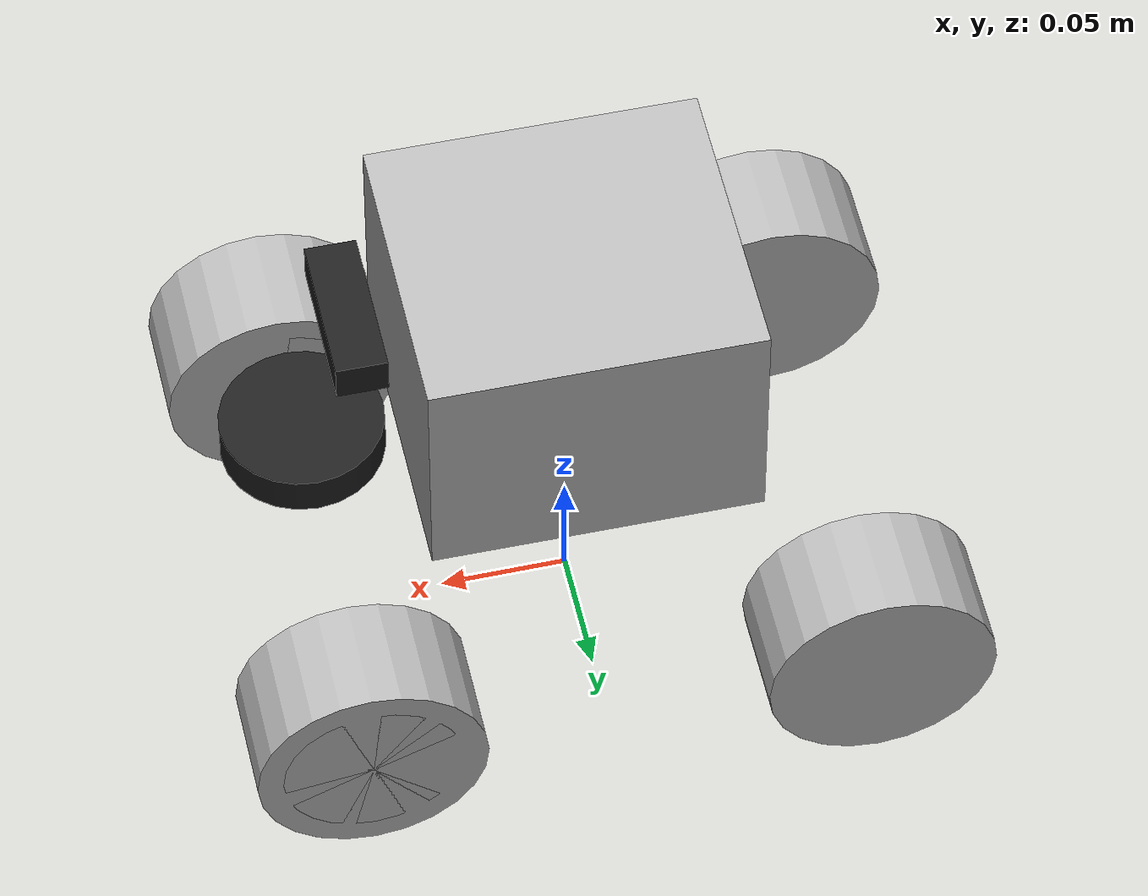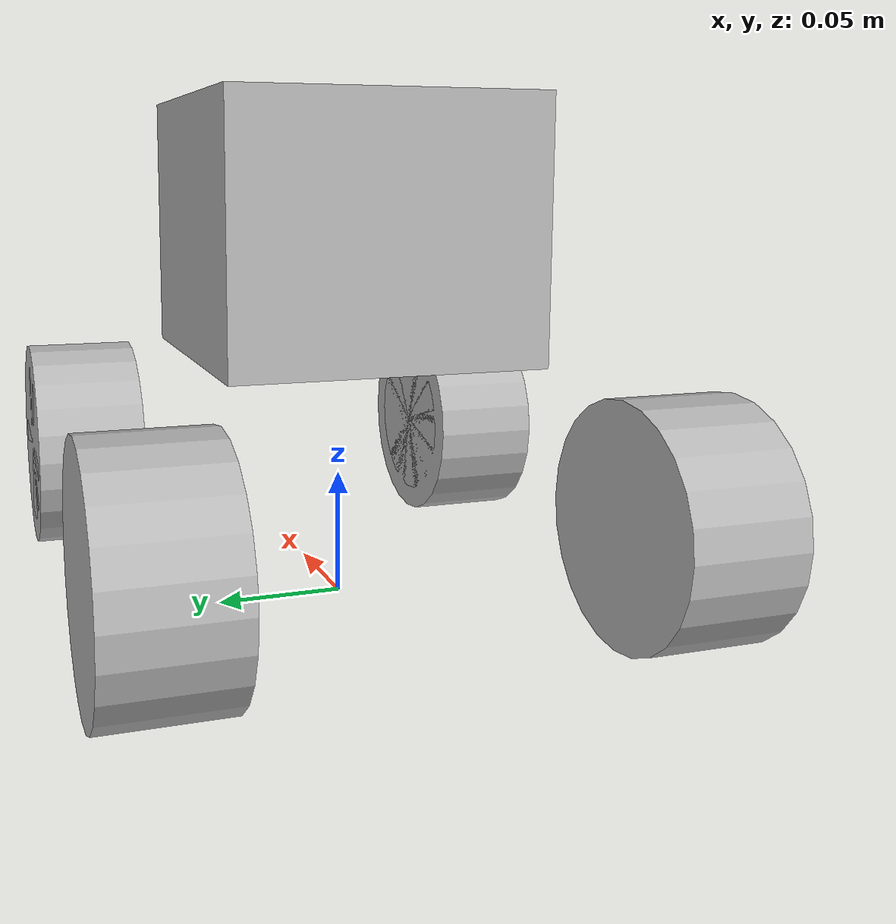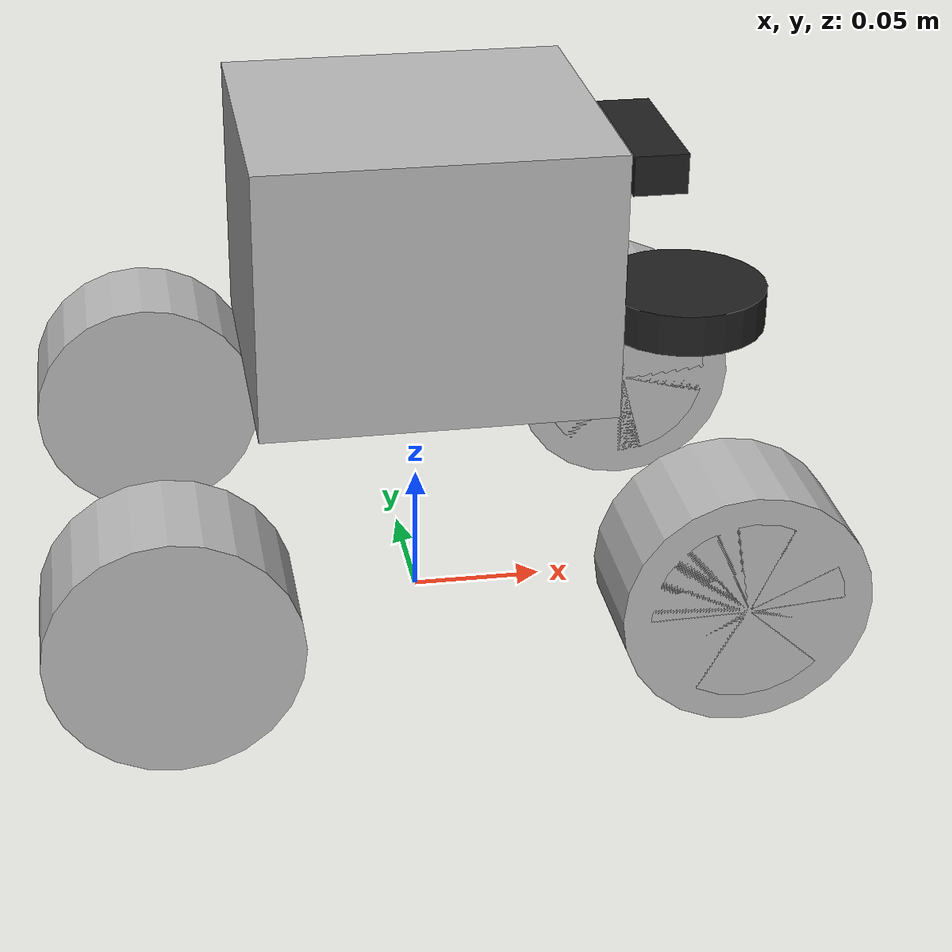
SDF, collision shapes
<?xml version="1.0"?>
<sdf version='1.9'>
  <model name='limo_ackerman'>
    <link name='base_footprint'>
      <inertial>
        <pose>0 0 0.15 0 0 0</pose>
        <mass>2.1556999999999999</mass>
        <inertia>
          <ixx>0.23999999999999999</ixx>
          <ixy>0</ixy>
          <ixz>0</ixz>
          <iyy>0.95999999999999996</iyy>
          <iyz>0</iyz>
          <izz>0.95999999999999996</izz>
        </inertia>
      </inertial>
      <collision name='base_footprint_fixed_joint_lump__base_link_collision'>
        <pose>0 0 0.15 0 0 0</pose>
        <geometry>
          <box>
            <size>0.13 0.12 0.1</size>
          </box>
        </geometry>
      </collision>
      <visual name='base_footprint_fixed_joint_lump__base_link_visual'>
        <pose>0 0 0 0 0 1.57</pose>
        <geometry>
          <mesh>
            <scale>1 1 1</scale>
            <uri>file:///home/esparza/uned_tfg/ros2_ws/install/uned_limo_gazebo/share/uned_limo_gazebo/limo_description/meshes/limo_optimal.dae</uri>
          </mesh>
        </geometry>
      </visual>
    </link>
    <joint name='depth_camera_joint' type='revolute'>
      <pose relative_to='base_footprint'>0.08400000000000001 0 0.18 0 0 0</pose>
      <parent>base_footprint</parent>
      <child>depth_camera_link</child>
      <axis>
        <xyz>1 0 0</xyz>
        <limit>
          <lower>0</lower>
          <upper>0</upper>
          <effort>0</effort>
          <velocity>0</velocity>
        </limit>
        <dynamics>
          <spring_reference>0</spring_reference>
          <spring_stiffness>0</spring_stiffness>
        </dynamics>
      </axis>
    </joint>
    <link name='depth_camera_link'>
      <pose relative_to='depth_camera_joint'>0 0 0 0 0 0</pose>
      <inertial>
        <pose>0 0 0 0 0 0</pose>
        <mass>0.10000000000000001</mass>
        <inertia>
          <ixx>9.9999999999999995e-07</ixx>
          <ixy>0</ixy>
          <ixz>0</ixz>
          <iyy>9.9999999999999995e-07</iyy>
          <iyz>0</iyz>
          <izz>9.9999999999999995e-07</izz>
        </inertia>
      </inertial>
      <collision name='depth_camera_link_fixed_joint_lump__depth_camera_collision_collision'>
        <pose>0 0 0 0 0 0</pose>
        <geometry>
          <box>
            <size>0.02 0.06 0.015</size>
          </box>
        </geometry>
      </collision>
      <visual name='depth_camera_link_fixed_joint_lump__depth_camera_visual_visual'>
        <pose>0 0 0 0 0 0</pose>
        <geometry>
          <box>
            <size>0.02 0.06 0.015</size>
          </box>
        </geometry>
        <material>
          <diffuse>0.125 0.125 0.125 1</diffuse>
          <ambient>0.125 0.125 0.125 1</ambient>
        </material>
      </visual>
      <sensor name='sensor_camera' type='depth_camera'>
        <pose>0.0 0.0 0.0 0.0 0.0 0.0</pose>
        <always_on>true</always_on>
        <visualize>true</visualize>
        <update_rate>10</update_rate>
        <topic>/limo/color/image_raw</topic>
        <camera name='head'>
          <camera_info_topic>/limo/color/camera_info</camera_info_topic>
          <horizontal_fov>1.3962634</horizontal_fov>
          <image>
            <width>640</width>
            <height>480</height>
            <format>R8G8B8</format>
          </image>
          <clip>
            <near>0.02</near>
            <far>300</far>
          </clip>
        </camera>
        <gz_frame_id>depth_link</gz_frame_id>
      </sensor>
    </link>
    <joint name='imu_joint' type='revolute'>
      <pose relative_to='base_footprint'>0 0 0.04999999999999999 0 0 0</pose>
      <parent>base_footprint</parent>
      <child>imu_link</child>
      <axis>
        <xyz>1 0 0</xyz>
        <limit>
          <lower>0</lower>
          <upper>0</upper>
          <effort>0</effort>
          <velocity>0</velocity>
        </limit>
        <dynamics>
          <spring_reference>0</spring_reference>
          <spring_stiffness>0</spring_stiffness>
        </dynamics>
      </axis>
    </joint>
    <link name='imu_link'>
      <pose relative_to='imu_joint'>0 0 0 0 0 0</pose>
      <inertial>
        <pose>0 0 0 0 0 0</pose>
        <mass>0.01</mass>
        <inertia>
          <ixx>9.9999999999999995e-08</ixx>
          <ixy>0</ixy>
          <ixz>0</ixz>
          <iyy>9.9999999999999995e-08</iyy>
          <iyz>0</iyz>
          <izz>9.9999999999999995e-08</izz>
        </inertia>
      </inertial>
      <collision name='imu_link_fixed_joint_lump__imu_collision_collision'>
        <pose>0 0 0 0 0 0</pose>
        <geometry>
          <box>
            <size>0.001 0.001 0.001</size>
          </box>
        </geometry>
      </collision>
      <visual name='imu_link_fixed_joint_lump__imu_visual_visual'>
        <pose>0 0 0 0 0 0</pose>
        <geometry>
          <box>
            <size>0.001 0.001 0.001</size>
          </box>
        </geometry>
        <material>
          <diffuse>0.125 0.125 0.125 1</diffuse>
          <ambient>0.125 0.125 0.125 1</ambient>
        </material>
      </visual>
      <gravity>true</gravity>
      <sensor name='twr_imu' type='imu'>
        <always_on>true</always_on>
        <update_rate>100</update_rate>
        <visualize>true</visualize>
        <topic>/limo/imu</topic>
        <pose>0 0 0 0 0 0</pose>
        <imu>
          <angular_velocity>
            <x>
              <noise type='gaussian'>
                <mean>0</mean>
                <stddev>0.00020000000000000001</stddev>
              </noise>
            </x>
            <y>
              <noise type='gaussian'>
                <mean>0</mean>
                <stddev>0.00020000000000000001</stddev>
              </noise>
            </y>
            <z>
              <noise type='gaussian'>
                <mean>0</mean>
                <stddev>0.00020000000000000001</stddev>
              </noise>
            </z>
          </angular_velocity>
          <linear_acceleration>
            <x>
              <noise type='gaussian'>
                <mean>0</mean>
                <stddev>0.017000000000000001</stddev>
              </noise>
            </x>
            <y>
              <noise type='gaussian'>
                <mean>0</mean>
                <stddev>0.017000000000000001</stddev>
              </noise>
            </y>
            <z>
              <noise type='gaussian'>
                <mean>0</mean>
                <stddev>0.017000000000000001</stddev>
              </noise>
            </z>
          </linear_acceleration>
          <orientation>
            <x>
              <noise type='gaussian'>
                <mean>0.0</mean>
                <stddev>2e-3</stddev>
              </noise>
            </x>
            <y>
              <noise type='gaussian'>
                <mean>0.0</mean>
                <stddev>2e-3</stddev>
              </noise>
            </y>
            <z>
              <noise type='gaussian'>
                <mean>0.0</mean>
                <stddev>2e-3</stddev>
              </noise>
            </z>
          </orientation>
        </imu>
        <gz_frame_id>imu_link</gz_frame_id>
      </sensor>
    </link>
    <joint name='laser_joint' type='revolute'>
      <pose relative_to='base_footprint'>0.103 0 0.116 0 0 0</pose>
      <parent>base_footprint</parent>
      <child>laser_link</child>
      <axis>
        <xyz>1 0 0</xyz>
        <limit>
          <lower>0</lower>
          <upper>0</upper>
          <effort>0</effort>
          <velocity>0</velocity>
        </limit>
        <dynamics>
          <spring_reference>0</spring_reference>
          <spring_stiffness>0</spring_stiffness>
        </dynamics>
      </axis>
    </joint>
    <link name='laser_link'>
      <pose relative_to='laser_joint'>0 0 0 0 0 0</pose>
      <inertial>
        <pose>0 0 0 0 0 0</pose>
        <mass>0.10000000000000001</mass>
        <inertia>
          <ixx>9.9999999999999995e-07</ixx>
          <ixy>0</ixy>
          <ixz>0</ixz>
          <iyy>9.9999999999999995e-07</iyy>
          <iyz>0</iyz>
          <izz>9.9999999999999995e-07</izz>
        </inertia>
      </inertial>
      <collision name='laser_link_fixed_joint_lump__laser_collision_collision'>
        <pose>0 0 0 0 0 0</pose>
        <geometry>
          <cylinder>
            <length>0.016</length>
            <radius>0.032000000000000001</radius>
          </cylinder>
        </geometry>
      </collision>
      <visual name='laser_link_fixed_joint_lump__laser_visual_visual'>
        <pose>0 0 0 0 0 0</pose>
        <geometry>
          <cylinder>
            <length>0.01</length>
            <radius>0.02</radius>
          </cylinder>
        </geometry>
        <material>
          <diffuse>0.125 0.125 0.125 1</diffuse>
          <ambient>0.125 0.125 0.125 1</ambient>
        </material>
      </visual>
      <sensor name='laser' type='gpu_lidar'>
        <always_on>true</always_on>
        <visualize>true</visualize>
        <update_rate>10</update_rate>
        <topic>/limo/scan</topic>
        <lidar>
          <scan>
            <horizontal>
              <samples>120</samples>
              <resolution>1</resolution>
              <min_angle>-3.1415899999999999</min_angle>
              <max_angle>3.1415899999999999</max_angle>
            </horizontal>
          </scan>
          <range>
            <min>0.29999999999999999</min>
            <max>15</max>
            <resolution>0.014999999999999999</resolution>
          </range>
          <noise>
            <type>gaussian</type>
            <mean>0</mean>
            <stddev>0.01</stddev>
          </noise>
        </lidar>
        <gz_frame_id>laser_link</gz_frame_id>
      </sensor>
    </link>
    <joint name='left_steering_hinge_wheel' type='revolute'>
      <pose relative_to='base_footprint'>0.1 0.07000000000000001 0.04900199999999999 0 0 0</pose>
      <parent>base_footprint</parent>
      <child>left_steering_hinge</child>
      <axis>
        <xyz>0 0 1</xyz>
        <limit>
          <lower>-0.52359876699999996</lower>
          <upper>0.52359876699999996</upper>
          <effort>5</effort>
          <velocity>0.5</velocity>
        </limit>
        <dynamics>
          <damping>1</damping>
          <friction>2</friction>
          <spring_reference>0</spring_reference>
          <spring_stiffness>0</spring_stiffness>
        </dynamics>
      </axis>
    </joint>
    <link name='left_steering_hinge'>
      <pose relative_to='left_steering_hinge_wheel'>0 0 0 0 0 0</pose>
      <inertial>
        <pose>0 0 0 0 0 0</pose>
        <mass>0.25</mass>
        <inertia>
          <ixx>0.0052500000000000003</ixx>
          <ixy>0</ixy>
          <ixz>0</ixz>
          <iyy>0.00035</iyy>
          <iyz>0</iyz>
          <izz>0.0052500000000000003</izz>
        </inertia>
      </inertial>
      <collision name='left_steering_hinge_collision'>
        <pose>0 0.0225 0 1.57 0 0</pose>
        <geometry>
          <cylinder>
            <length>0.044999999999999998</length>
            <radius>0.035000000000000003</radius>
          </cylinder>
        </geometry>
      </collision>
      <visual name='left_steering_hinge_visual'>
        <pose>0 0 0 0 0 0</pose>
        <geometry>
          <cylinder>
            <length>0.0001</length>
            <radius>0.0001</radius>
          </cylinder>
        </geometry>
      </visual>
    </link>
    <joint name='front_left_wheel' type='revolute'>
      <pose relative_to='left_steering_hinge'>0 0 0 0 0 0</pose>
      <parent>left_steering_hinge</parent>
      <child>front_left_wheel_link</child>
      <axis>
        <xyz>0 1 0</xyz>
        <limit>
          <lower>-10000000000000000</lower>
          <upper>10000000000000000</upper>
        </limit>
        <dynamics>
          <spring_reference>0</spring_reference>
          <spring_stiffness>0</spring_stiffness>
        </dynamics>
      </axis>
    </joint>
    <link name='front_left_wheel_link'>
      <pose relative_to='front_left_wheel'>0 0 0 0 0 0</pose>
      <inertial>
        <pose>0 0 0 0 0 0</pose>
        <mass>0.25</mass>
        <inertia>
          <ixx>0.0052500000000000003</ixx>
          <ixy>0</ixy>
          <ixz>0</ixz>
          <iyy>0.00035</iyy>
          <iyz>0</iyz>
          <izz>0.0052500000000000003</izz>
        </inertia>
      </inertial>
      <collision name='front_left_wheel_link_collision'>
        <pose>0 0.0225 0 1.57 0 0</pose>
        <geometry>
          <cylinder>
            <length>0.044999999999999998</length>
            <radius>0.044999999999999998</radius>
          </cylinder>
        </geometry>
        <surface>
          <friction>
            <ode>
              <mu>10</mu>
              <mu2>10</mu2>
              <fdir1>1 0 0</fdir1>
            </ode>
          </friction>
          <contact>
            <ode>
              <kp>10000000.0</kp>
              <kd>1.0</kd>
              <min_depth>0.01</min_depth>
            </ode>
          </contact>
        </surface>
        <maxContacts value="64"/>
      </collision>
      <visual name='front_left_wheel_link_visual'>
        <pose>0 0 0 0 0 0</pose>
        <geometry>
          <mesh>
            <scale>1 1 1</scale>
            <uri>file:///home/esparza/uned_tfg/ros2_ws/install/uned_limo_gazebo/share/uned_limo_gazebo/limo_description/meshes/limo_optimal_wheels.dae</uri>
          </mesh>
        </geometry>
      </visual>
    </link>
    <joint name='rear_left_wheel' type='revolute'>
      <pose relative_to='base_footprint'>-0.1 0.07000000000000001 0.04900199999999999 0 0 0</pose>
      <parent>base_footprint</parent>
      <child>rear_left_wheel_link</child>
      <axis>
        <xyz>0 1 0</xyz>
        <limit>
          <lower>-10000000000000000</lower>
          <upper>10000000000000000</upper>
        </limit>
        <dynamics>
          <spring_reference>0</spring_reference>
          <spring_stiffness>0</spring_stiffness>
        </dynamics>
      </axis>
    </joint>
    <link name='rear_left_wheel_link'>
      <pose relative_to='rear_left_wheel'>0 0 0 0 0 0</pose>
      <inertial>
        <pose>0 0 0 0 0 0</pose>
        <mass>0.5</mass>
        <inertia>
          <ixx>0.01055</ixx>
          <ixy>0</ixy>
          <ixz>0</ixz>
          <iyy>0.00075000000000000002</iyy>
          <iyz>0</iyz>
          <izz>0.01055</izz>
        </inertia>
      </inertial>
      <collision name='rear_left_wheel_link_collision'>
        <pose>0 0.0225 0 1.57 0 0</pose>
        <geometry>
          <cylinder>
            <length>0.044999999999999998</length>
            <radius>0.044999999999999998</radius>
          </cylinder>
        </geometry>
        <surface>
          <friction>
            <ode>
              <mu>10</mu>
              <mu2>10</mu2>
              <fdir1>1 0 0</fdir1>
            </ode>
          </friction>
          <contact>
            <ode>
              <kp>10000000.0</kp>
              <kd>1.0</kd>
              <min_depth>0.01</min_depth>
            </ode>
          </contact>
        </surface>
        <maxContacts value="64"/>
      </collision>
      <visual name='rear_left_wheel_link_visual'>
        <pose>0 0 0 0 0 0</pose>
        <geometry>
          <mesh>
            <scale>1 1 1</scale>
            <uri>file:///home/esparza/uned_tfg/ros2_ws/install/uned_limo_gazebo/share/uned_limo_gazebo/limo_description/meshes/limo_optimal_wheels.dae</uri>
          </mesh>
        </geometry>
      </visual>
    </link>
    <joint name='rear_right_wheel' type='revolute'>
      <pose relative_to='base_footprint'>-0.1 -0.07000000000000001 0.04900199999999999 3.14159 0 0</pose>
      <parent>base_footprint</parent>
      <child>rear_right_wheel_link</child>
      <axis>
        <xyz>0 -1 0</xyz>
        <limit>
          <lower>-10000000000000000</lower>
          <upper>10000000000000000</upper>
        </limit>
        <dynamics>
          <spring_reference>0</spring_reference>
          <spring_stiffness>0</spring_stiffness>
        </dynamics>
      </axis>
    </joint>
    <link name='rear_right_wheel_link'>
      <pose relative_to='rear_right_wheel'>0 0 0 0 0 0</pose>
      <inertial>
        <pose>0 0 0 0 0 0</pose>
        <mass>0.5</mass>
        <inertia>
          <ixx>0.01055</ixx>
          <ixy>0</ixy>
          <ixz>0</ixz>
          <iyy>0.00075000000000000002</iyy>
          <iyz>0</iyz>
          <izz>0.01055</izz>
        </inertia>
      </inertial>
      <collision name='rear_right_wheel_link_collision'>
        <pose>0 0.0225 0 1.57 0 0</pose>
        <geometry>
          <cylinder>
            <length>0.044999999999999998</length>
            <radius>0.044999999999999998</radius>
          </cylinder>
        </geometry>
        <surface>
          <friction>
            <ode>
              <mu>10</mu>
              <mu2>10</mu2>
              <fdir1>1 0 0</fdir1>
            </ode>
          </friction>
          <contact>
            <ode>
              <kp>10000000.0</kp>
              <kd>1.0</kd>
              <min_depth>0.01</min_depth>
            </ode>
          </contact>
        </surface>
        <maxContacts value="64"/>
      </collision>
      <visual name='rear_right_wheel_link_visual'>
        <pose>0 0 0 0 0 0</pose>
        <geometry>
          <mesh>
            <scale>1 1 1</scale>
            <uri>file:///home/esparza/uned_tfg/ros2_ws/install/uned_limo_gazebo/share/uned_limo_gazebo/limo_description/meshes/limo_optimal_wheels.dae</uri>
          </mesh>
        </geometry>
      </visual>
    </link>
    <joint name='right_steering_hinge_wheel' type='revolute'>
      <pose relative_to='base_footprint'>0.1 -0.07000000000000001 0.04900199999999999 3.14159 0 0</pose>
      <parent>base_footprint</parent>
      <child>right_steering_hinge</child>
      <axis>
        <xyz>0 0 -1</xyz>
        <limit>
          <lower>-0.52359876699999996</lower>
          <upper>0.52359876699999996</upper>
          <effort>5</effort>
          <velocity>0.5</velocity>
        </limit>
        <dynamics>
          <damping>1</damping>
          <friction>2</friction>
          <spring_reference>0</spring_reference>
          <spring_stiffness>0</spring_stiffness>
        </dynamics>
      </axis>
    </joint>
    <link name='right_steering_hinge'>
      <pose relative_to='right_steering_hinge_wheel'>0 0 0 0 0 0</pose>
      <inertial>
        <pose>0 0 0 0 0 0</pose>
        <mass>0.25</mass>
        <inertia>
          <ixx>0.0052500000000000003</ixx>
          <ixy>0</ixy>
          <ixz>0</ixz>
          <iyy>0.00035</iyy>
          <iyz>0</iyz>
          <izz>0.0052500000000000003</izz>
        </inertia>
      </inertial>
      <collision name='right_steering_hinge_collision'>
        <pose>0 0.0225 0 1.57 0 0</pose>
        <geometry>
          <cylinder>
            <length>0.044999999999999998</length>
            <radius>0.035000000000000003</radius>
          </cylinder>
        </geometry>
      </collision>
      <visual name='right_steering_hinge_visual'>
        <pose>0 0 0 0 0 0</pose>
        <geometry>
          <cylinder>
            <length>0.0001</length>
            <radius>0.0001</radius>
          </cylinder>
        </geometry>
      </visual>
    </link>
    <joint name='front_right_wheel' type='revolute'>
      <pose relative_to='right_steering_hinge'>0 0 0 0 0 0</pose>
      <parent>right_steering_hinge</parent>
      <child>front_right_wheel_link</child>
      <axis>
        <xyz>0 -1 0</xyz>
        <limit>
          <lower>-10000000000000000</lower>
          <upper>10000000000000000</upper>
        </limit>
        <dynamics>
          <spring_reference>0</spring_reference>
          <spring_stiffness>0</spring_stiffness>
        </dynamics>
      </axis>
    </joint>
    <link name='front_right_wheel_link'>
      <pose relative_to='front_right_wheel'>0 0 0 0 0 0</pose>
      <inertial>
        <pose>0 0 0 0 0 0</pose>
        <mass>0.25</mass>
        <inertia>
          <ixx>0.0052500000000000003</ixx>
          <ixy>0</ixy>
          <ixz>0</ixz>
          <iyy>0.00035</iyy>
          <iyz>0</iyz>
          <izz>0.0052500000000000003</izz>
        </inertia>
      </inertial>
      <collision name='front_right_wheel_link_collision'>
        <pose>0 0.0225 0 1.57 0 0</pose>
        <geometry>
          <cylinder>
            <length>0.044999999999999998</length>
            <radius>0.044999999999999998</radius>
          </cylinder>
        </geometry>
        <surface>
          <friction>
            <ode>
              <mu>10</mu>
              <mu2>10</mu2>
              <fdir1>1 0 0</fdir1>
            </ode>
          </friction>
          <contact>
            <ode>
              <kp>10000000.0</kp>
              <kd>1.0</kd>
              <min_depth>0.01</min_depth>
            </ode>
          </contact>
        </surface>
        <maxContacts value="64"/>
      </collision>
      <visual name='front_right_wheel_link_visual'>
        <pose>0 0 0 0 0 0</pose>
        <geometry>
          <mesh>
            <scale>1 1 1</scale>
            <uri>file:///home/esparza/uned_tfg/ros2_ws/install/uned_limo_gazebo/share/uned_limo_gazebo/limo_description/meshes/limo_optimal_wheels.dae</uri>
          </mesh>
        </geometry>
      </visual>
    </link>
    <plugin name='ignition::gazebo::systems::AckermannSteering' filename='libignition-gazebo-ackermann-steering-system.so'>
      <left_joint>front_left_wheel</left_joint>
      <right_joint>front_right_wheel</right_joint>
      <left_joint>rear_left_wheel</left_joint>
      <right_joint>rear_right_wheel</right_joint>
      <left_steering_joint>left_steering_hinge_wheel</left_steering_joint>
      <right_steering_joint>right_steering_hinge_wheel</right_steering_joint>
      <wheelbase>0.2</wheelbase>
      <wheel_separation>0.172</wheel_separation>
      <kingpin_width>0.163</kingpin_width> <!-- 0.155 (90% de 0.172) o 0.163 (95% de 0.172) -->
      <steering_limit>0.5</steering_limit>
      <wheel_radius>0.045</wheel_radius>
      <min_velocity>-1</min_velocity>
      <max_velocity>1</max_velocity>
      <min_acceleration>-1</min_acceleration>
      <max_acceleration>1</max_acceleration>
      <topic>cmd_vel</topic>
      <odom_topic>odom</odom_topic>
      <frame_id>odom</frame_id>
      <tf_topic>tf</tf_topic>
      <odom_publisher_frequency>30</odom_publisher_frequency>
      <child_frame_id>base_footprint</child_frame_id>
    </plugin>
    <plugin name='ignition::gazebo::systems::JointStatePublisher' filename='libignition-gazebo-joint-state-publisher-system.so'>
      <topic>joint_states</topic>
      <joint_name>front_left_wheel</joint_name>
      <joint_name>front_right_wheel</joint_name>
      <joint_name>left_steering_hinge_wheel</joint_name>
      <joint_name>right_steering_hinge_wheel</joint_name>
      <joint_name>rear_left_wheel</joint_name>
      <joint_name>rear_right_wheel</joint_name>
    </plugin>
    <plugin filename="libignition-gazebo-wheel-slip-system.so" name="ignition::gazebo::systems::WheelSlip">
      <wheel link_name="front_left_wheel_link">
        <slip_compliance_lateral>0.001</slip_compliance_lateral>          <!-- Ajustar estos valores. Entre 0.01 y 0.001 va decente -->
        <slip_compliance_longitudinal>0.1</slip_compliance_longitudinal>  <!-- entre 0.2 y 0.09 funciona bien -->
        <wheel_normal_force>6.01</wheel_normal_force>
        <wheel_radius>0.045</wheel_radius>
      </wheel>
      <wheel link_name="front_right_wheel_link">
        <slip_compliance_lateral>0.001</slip_compliance_lateral>
        <slip_compliance_longitudinal>0.1</slip_compliance_longitudinal>
        <wheel_normal_force>6.01</wheel_normal_force>
        <wheel_radius>0.045</wheel_radius>
      </wheel>
      <wheel link_name="rear_left_wheel_link">
        <slip_compliance_lateral>0.005</slip_compliance_lateral>
        <slip_compliance_longitudinal>0.1</slip_compliance_longitudinal>
        <wheel_normal_force>6.01</wheel_normal_force>
        <wheel_radius>0.045</wheel_radius>
      </wheel>
      <wheel link_name="rear_right_wheel_link">
        <slip_compliance_lateral>0.005</slip_compliance_lateral>
        <slip_compliance_longitudinal>0.1</slip_compliance_longitudinal>
        <wheel_normal_force>6.01</wheel_normal_force>
        <wheel_radius>0.045</wheel_radius>
      </wheel>
    </plugin>
    <frame name='inertial_joint' attached_to='base_link'>
      <pose>0 0 0 0 -0 0</pose>
    </frame>
    <frame name='inertial_link' attached_to='inertial_joint'/>
    <frame name='base_joint' attached_to='base_footprint'>
      <pose>0 0 0.15 0 -0 0</pose>
    </frame>
    <frame name='base_link' attached_to='base_joint'/>
    <frame name='depth_camera_to_camera_joint' attached_to='depth_camera_link'>
      <pose>0 0 0 -1.57079 -0 -1.57079</pose>
    </frame>
    <frame name='depth_link' attached_to='depth_camera_to_camera_joint'/>
  </model>
</sdf>
